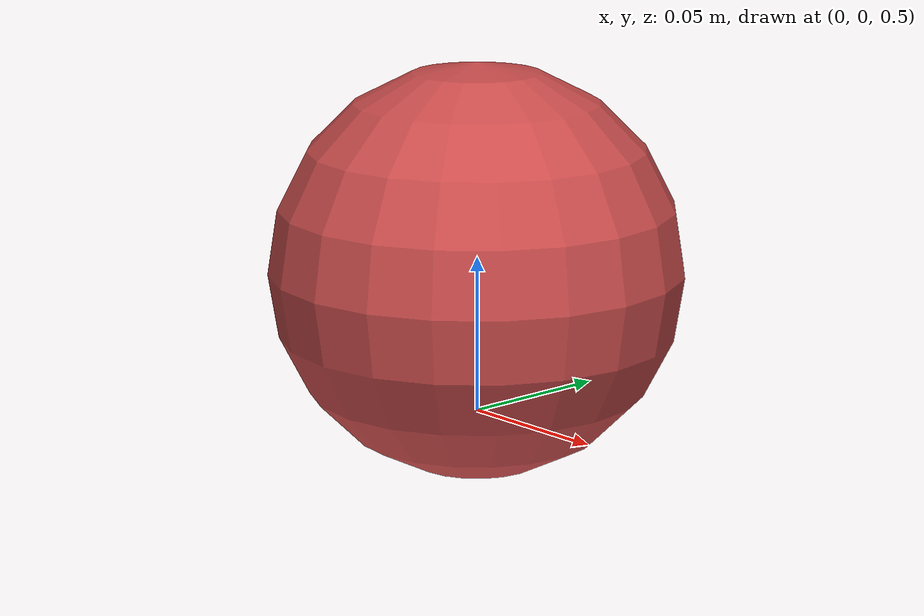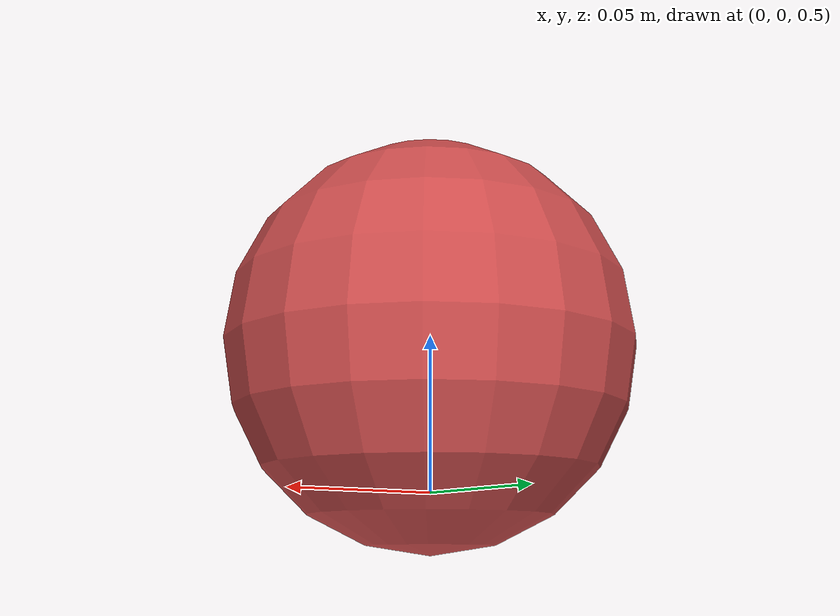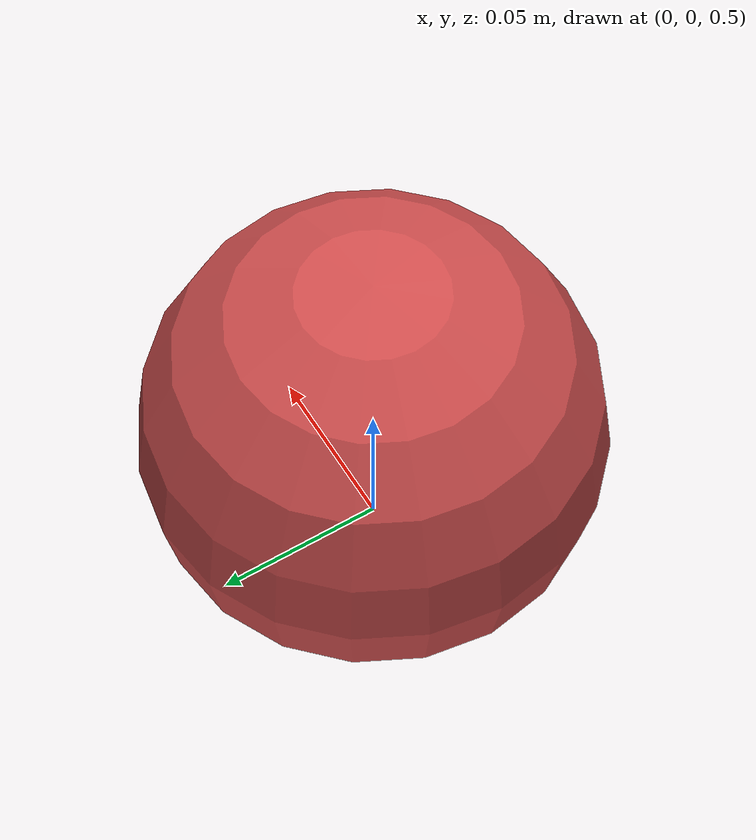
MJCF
<mujoco model="drop_002">
  <option timestep="0.001" gravity="0 0 -9.81"/>

  <visual>
    <headlight ambient="0.5 0.5 0.5"/>
  </visual>

  <asset>
    <texture name="grid" type="2d" builtin="checker" width="512" height="512" rgb1="0.2 0.3 0.4" rgb2="0.3 0.4 0.5"/>
    <material name="grid" texture="grid" texrepeat="1 1" reflectance="0.2"/>
    <material name="finger" rgba="0.8 0.3 0.3 1.0"/>
  </asset>

  <worldbody>
    <!-- Ground plane -->
    <geom name="floor" type="plane" size="2 2 0.1" material="grid"
          condim="6" friction="0.5035722493595223 0.005 0.0001" solref="0.02 0.9134770393944391"/>

    <!-- Sphere -->
    <body name="fingertip" pos="0 0 0.5461512665523026">
      <freejoint/>
      <geom name="finger" type="sphere" size="0.06556944688999121" mass="0.14442584884502918" material="finger"
            condim="6" friction="0.5035722493595223 0.005 0.0001" solref="0.02 0.9134770393944391"/>
      <site name="contact_site" pos="0 0 0" size="0.001"/>
    </body>
  </worldbody>

  <sensor>
    <touch name="finger_touch" site="contact_site"/>
    <framepos name="finger_pos" objtype="site" objname="contact_site"/>
    <framequat name="finger_quat" objtype="site" objname="contact_site"/>
    <framelinvel name="finger_vel" objtype="site" objname="contact_site"/>
  </sensor>
</mujoco>
